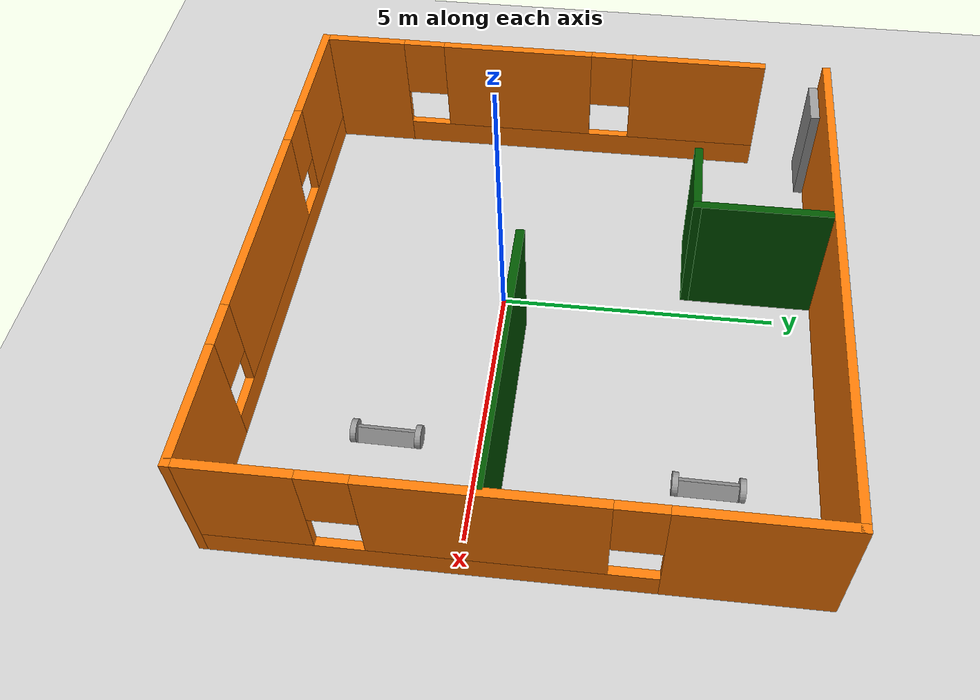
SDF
<sdf version="1.6">
 <world name="default">
  <plugin name="hello" filename="libhello.so"/>
  <light name="sun" type="directional">
   <pose>0 0 10 0 -0 0</pose>
   <diffuse>0.8 0.8 0.8 1</diffuse>
   <specular>0.2 0.2 0.2 1</specular>
   <attenuation>
    <range>1000</range>
    <constant>0.9</constant>
    <linear>0.01</linear>
    <quadratic>0.001</quadratic>
   </attenuation>
   <direction>-0.5 0.1 -0.9</direction>
  </light>
  <model name="ground_plane">
   <static>1</static>
   <link name="link">
    <collision name="collision">
     <geometry><plane><normal>0 0 1</normal><size>100 100</size></plane></geometry>
     <surface><friction><ode><mu>100</mu><mu2>50</mu2></ode></friction></surface>
    </collision>
    <visual name="visual">
     <cast_shadows>0</cast_shadows>
     <geometry><plane><normal>0 0 1</normal><size>100 100</size></plane></geometry>
     <material>
      <script><uri>file://media/materials/scripts/gazebo.material</uri><name>Gazebo/Grey</name></script>
     </material>
    </visual>
   </link>
  </model>
  <gravity>0 0 -9.8</gravity>
  <magnetic_field>6e-06 2.3e-05 -4.2e-05</magnetic_field>
  <atmosphere type="adiabatic"/>
  <physics name="default_physics" default="0" type="ode">
   <max_step_size>0.001</max_step_size>
   <real_time_factor>1</real_time_factor>
   <real_time_update_rate>1000</real_time_update_rate>
  </physics>
  <scene><ambient>0.4 0.4 0.4 1</ambient><background>0.7 0.7 0.7 1</background><shadows>1</shadows></scene>
  <spherical_coordinates>
   <surface_model>EARTH_WGS84</surface_model>
   <latitude_deg>0</latitude_deg>
   <longitude_deg>0</longitude_deg>
   <elevation>0</elevation>
   <heading_deg>0</heading_deg>
  </spherical_coordinates>
  <model name="model">
   <pose>0.571139 0.85305 0 0 -0 0</pose>
   <link name="Door_0">
    <collision name="Door_0_Collision">
     <geometry><box><size>0.9 0.17 2</size></box></geometry>
     <pose>0 0 1 0 -0 0</pose>
    </collision>
    <visual name="Door_0_Visual">
     <pose>0 0 1 0 -0 0</pose>
     <geometry><box><size>0.9 0.17 2</size></box></geometry>
     <material>
      <script><uri>file://media/materials/scripts/gazebo.material</uri><name>Gazebo/Grey</name></script>
     </material>
    </visual>
    <pose>-4.53143 4.75921 0 0 -0 0</pose>
   </link>
   <link name="Wall_11">
    <pose>-4.925 -0.625 0 0 -0 1.5708</pose>
    <visual name="Wall_11_Visual_0">
     <pose>-3.54616 0 1.25 0 -0 0</pose>
     <geometry><box><size>1.65768 0.15 2.5</size></box></geometry>
     <material>
      <script><uri>file://media/materials/scripts/gazebo.material</uri><name>Gazebo/Grey</name></script>
      <ambient>0.996078 0.47451 0.0196078 1</ambient>
     </material>
     <meta><layer>0</layer></meta>
    </visual>
    <collision name="Wall_11_Collision_0">
     <geometry><box><size>1.65768 0.15 2.5</size></box></geometry>
     <pose>-3.54616 0 1.25 0 -0 0</pose>
    </collision>
    <visual name="Wall_11_Visual_1">
     <pose>0.828841 0 0.25 0 -0 0</pose>
     <geometry><box><size>7.09232 0.15 0.5</size></box></geometry>
     <material>
      <script><uri>file://media/materials/scripts/gazebo.material</uri><name>Gazebo/Grey</name></script>
      <ambient>0.996078 0.47451 0.0196078 1</ambient>
     </material>
     <meta><layer>0</layer></meta>
    </visual>
    <collision name="Wall_11_Collision_1">
     <geometry><box><size>7.09232 0.15 0.5</size></box></geometry>
     <pose>0.828841 0 0.25 0 -0 0</pose>
    </collision>
    <visual name="Wall_11_Visual_2">
     <pose>-0.456361 0 1.5 0 -0 0</pose>
     <geometry><box><size>2.92191 0.15 2</size></box></geometry>
     <material>
      <script><uri>file://media/materials/scripts/gazebo.material</uri><name>Gazebo/Grey</name></script>
      <ambient>0.996078 0.47451 0.0196078 1</ambient>
     </material>
     <meta><layer>0</layer></meta>
    </visual>
    <collision name="Wall_11_Collision_2">
     <geometry><box><size>2.92191 0.15 2</size></box></geometry>
     <pose>-0.456361 0 1.5 0 -0 0</pose>
    </collision>
    <visual name="Wall_11_Visual_3">
     <pose>3.0898 0 1.5 0 -0 0</pose>
     <geometry><box><size>2.57041 0.15 2</size></box></geometry>
     <material>
      <script><uri>file://media/materials/scripts/gazebo.material</uri><name>Gazebo/Grey</name></script>
      <ambient>0.996078 0.47451 0.0196078 1</ambient>
     </material>
     <meta><layer>0</layer></meta>
    </visual>
    <collision name="Wall_11_Collision_3">
     <geometry><box><size>2.57041 0.15 2</size></box></geometry>
     <pose>3.0898 0 1.5 0 -0 0</pose>
    </collision>
    <visual name="Wall_11_Visual_4">
     <pose>-2.31732 0 1.9 0 -0 0</pose>
     <geometry><box><size>0.8 0.15 1.2</size></box></geometry>
     <material>
      <script><uri>file://media/materials/scripts/gazebo.material</uri><name>Gazebo/Grey</name></script>
      <ambient>0.996078 0.47451 0.0196078 1</ambient>
     </material>
     <meta><layer>0</layer></meta>
    </visual>
    <collision name="Wall_11_Collision_4">
     <geometry><box><size>0.8 0.15 1.2</size></box></geometry>
     <pose>-2.31732 0 1.9 0 -0 0</pose>
    </collision>
    <visual name="Wall_11_Visual_5">
     <pose>1.4046 0 1.9 0 -0 0</pose>
     <geometry><box><size>0.8 0.15 1.2</size></box></geometry>
     <material>
      <script><uri>file://media/materials/scripts/gazebo.material</uri><name>Gazebo/Grey</name></script>
      <ambient>0.996078 0.47451 0.0196078 1</ambient>
     </material>
     <meta><layer>0</layer></meta>
    </visual>
    <collision name="Wall_11_Collision_5">
     <geometry><box><size>0.8 0.15 1.2</size></box></geometry>
     <pose>1.4046 0 1.9 0 -0 0</pose>
    </collision>
   </link>
   <link name="Wall_13">
    <collision name="Wall_13_Collision">
     <geometry><box><size>5 0.15 2.5</size></box></geometry>
     <pose>0 0 1.25 0 -0 0</pose>
    </collision>
    <visual name="Wall_13_Visual">
     <pose>0 0 1.25 0 -0 0</pose>
     <geometry><box><size>5 0.15 2.5</size></box></geometry>
     <material>
      <script><uri>file://media/materials/scripts/gazebo.material</uri><name>Gazebo/Grey</name></script>
      <ambient>0 0.333333 0 1</ambient>
     </material>
     <meta><layer>0</layer></meta>
    </visual>
    <pose>2.38936 -0.443711 0 0 -0 3.14159</pose>
   </link>
   <link name="Wall_15">
    <collision name="Wall_15_Collision">
     <geometry><box><size>2.5 0.15 2.5</size></box></geometry>
     <pose>0 0 1.25 0 -0 0</pose>
    </collision>
    <visual name="Wall_15_Visual">
     <pose>0 0 1.25 0 -0 0</pose>
     <geometry><box><size>2.5 0.15 2.5</size></box></geometry>
     <material>
      <script><uri>file://media/materials/scripts/gazebo.material</uri><name>Gazebo/Grey</name></script>
      <ambient>0 0.333333 0 1</ambient>
     </material>
     <meta><layer>0</layer></meta>
    </visual>
    <pose>-1.02602 3.69136 0 0 0 -1.5708</pose>
   </link>
   <link name="Wall_16">
    <collision name="Wall_16_Collision">
     <geometry><box><size>1.5 0.15 2.5</size></box></geometry>
     <pose>0 0 1.25 0 -0 0</pose>
    </collision>
    <visual name="Wall_16_Visual">
     <pose>0 0 1.25 0 -0 0</pose>
     <geometry><box><size>1.5 0.15 2.5</size></box></geometry>
     <material>
      <script><uri>file://media/materials/scripts/gazebo.material</uri><name>Gazebo/Grey</name></script>
      <ambient>0 0.333333 0 1</ambient>
     </material>
     <meta><layer>0</layer></meta>
    </visual>
    <pose>-1.70102 2.51636 0 0 -0 3.14159</pose>
   </link>
   <link name="Wall_4">
    <collision name="Wall_4_Collision">
     <geometry><box><size>10 0.15 2.5</size></box></geometry>
     <pose>0 0 1.25 0 -0 0</pose>
    </collision>
    <visual name="Wall_4_Visual">
     <pose>0 0 1.25 0 -0 0</pose>
     <geometry><box><size>10 0.15 2.5</size></box></geometry>
     <material>
      <script><uri>file://media/materials/scripts/gazebo.material</uri><name>Gazebo/Grey</name></script>
      <ambient>0.996078 0.47451 0.0196078 1</ambient>
     </material>
     <meta><layer>0</layer></meta>
    </visual>
    <pose>0 4.925 0 0 -0 0</pose>
   </link>
   <link name="Wall_6">
    <pose>4.925 0 0 0 0 -1.5708</pose>
    <visual name="Wall_6_Visual_0">
     <pose>-3.63595 0 1.25 0 -0 0</pose>
     <geometry><box><size>2.7281 0.15 2.5</size></box></geometry>
     <material>
      <script><uri>file://media/materials/scripts/gazebo.material</uri><name>Gazebo/Grey</name></script>
      <ambient>0.996078 0.47451 0.0196078 1</ambient>
     </material>
     <meta><layer>0</layer></meta>
    </visual>
    <collision name="Wall_6_Collision_0">
     <geometry><box><size>2.7281 0.15 2.5</size></box></geometry>
     <pose>-3.63595 0 1.25 0 -0 0</pose>
    </collision>
    <visual name="Wall_6_Visual_1">
     <pose>1.36405 0 0.25 0 -0 0</pose>
     <geometry><box><size>7.2719 0.15 0.5</size></box></geometry>
     <material>
      <script><uri>file://media/materials/scripts/gazebo.material</uri><name>Gazebo/Grey</name></script>
      <ambient>0.996078 0.47451 0.0196078 1</ambient>
     </material>
     <meta><layer>0</layer></meta>
    </visual>
    <collision name="Wall_6_Collision_1">
     <geometry><box><size>7.2719 0.15 0.5</size></box></geometry>
     <pose>1.36405 0 0.25 0 -0 0</pose>
    </collision>
    <visual name="Wall_6_Visual_2">
     <pose>0.393617 0 1.5 0 -0 0</pose>
     <geometry><box><size>3.73102 0.15 2</size></box></geometry>
     <material>
      <script><uri>file://media/materials/scripts/gazebo.material</uri><name>Gazebo/Grey</name></script>
      <ambient>0.996078 0.47451 0.0196078 1</ambient>
     </material>
     <meta><layer>0</layer></meta>
    </visual>
    <collision name="Wall_6_Collision_2">
     <geometry><box><size>3.73102 0.15 2</size></box></geometry>
     <pose>0.393617 0 1.5 0 -0 0</pose>
    </collision>
    <visual name="Wall_6_Visual_3">
     <pose>4.02956 0 1.5 0 -0 0</pose>
     <geometry><box><size>1.94087 0.15 2</size></box></geometry>
     <material>
      <script><uri>file://media/materials/scripts/gazebo.material</uri><name>Gazebo/Grey</name></script>
      <ambient>0.996078 0.47451 0.0196078 1</ambient>
     </material>
     <meta><layer>0</layer></meta>
    </visual>
    <collision name="Wall_6_Collision_3">
     <geometry><box><size>1.94087 0.15 2</size></box></geometry>
     <pose>4.02956 0 1.5 0 -0 0</pose>
    </collision>
    <visual name="Wall_6_Visual_4">
     <pose>-1.8719 0 1.9 0 -0 0</pose>
     <geometry><box><size>0.8 0.15 1.2</size></box></geometry>
     <material>
      <script><uri>file://media/materials/scripts/gazebo.material</uri><name>Gazebo/Grey</name></script>
      <ambient>0.996078 0.47451 0.0196078 1</ambient>
     </material>
     <meta><layer>0</layer></meta>
    </visual>
    <collision name="Wall_6_Collision_4">
     <geometry><box><size>0.8 0.15 1.2</size></box></geometry>
     <pose>-1.8719 0 1.9 0 -0 0</pose>
    </collision>
    <visual name="Wall_6_Visual_5">
     <pose>2.65913 0 1.9 0 -0 0</pose>
     <geometry><box><size>0.8 0.15 1.2</size></box></geometry>
     <material>
      <script><uri>file://media/materials/scripts/gazebo.material</uri><name>Gazebo/Grey</name></script>
      <ambient>0.996078 0.47451 0.0196078 1</ambient>
     </material>
     <meta><layer>0</layer></meta>
    </visual>
    <collision name="Wall_6_Collision_5">
     <geometry><box><size>0.8 0.15 1.2</size></box></geometry>
     <pose>2.65913 0 1.9 0 -0 0</pose>
    </collision>
   </link>
   <link name="Wall_7">
    <pose>0 -4.925 0 0 -0 3.14159</pose>
    <visual name="Wall_7_Visual_0">
     <pose>-3.9051 0 1.25 0 -0 0</pose>
     <geometry><box><size>2.1898 0.15 2.5</size></box></geometry>
     <material>
      <script><uri>file://media/materials/scripts/gazebo.material</uri><name>Gazebo/Grey</name></script>
      <ambient>0.996078 0.47451 0.0196078 1</ambient>
     </material>
     <meta><layer>0</layer></meta>
    </visual>
    <collision name="Wall_7_Collision_0">
     <geometry><box><size>2.1898 0.15 2.5</size></box></geometry>
     <pose>-3.9051 0 1.25 0 -0 0</pose>
    </collision>
    <visual name="Wall_7_Visual_1">
     <pose>1.0949 0 0.25 0 -0 0</pose>
     <geometry><box><size>7.8102 0.15 0.5</size></box></geometry>
     <material>
      <script><uri>file://media/materials/scripts/gazebo.material</uri><name>Gazebo/Grey</name></script>
      <ambient>0.996078 0.47451 0.0196078 1</ambient>
     </material>
     <meta><layer>0</layer></meta>
    </visual>
    <collision name="Wall_7_Collision_1">
     <geometry><box><size>7.8102 0.15 0.5</size></box></geometry>
     <pose>1.0949 0 0.25 0 -0 0</pose>
    </collision>
    <visual name="Wall_7_Visual_2">
     <pose>-0.063779 0 1.5 0 -0 0</pose>
     <geometry><box><size>3.89285 0.15 2</size></box></geometry>
     <material>
      <script><uri>file://media/materials/scripts/gazebo.material</uri><name>Gazebo/Grey</name></script>
      <ambient>0.996078 0.47451 0.0196078 1</ambient>
     </material>
     <meta><layer>0</layer></meta>
    </visual>
    <collision name="Wall_7_Collision_2">
     <geometry><box><size>3.89285 0.15 2</size></box></geometry>
     <pose>-0.063779 0 1.5 0 -0 0</pose>
    </collision>
    <visual name="Wall_7_Visual_3">
     <pose>3.84132 0 1.5 0 -0 0</pose>
     <geometry><box><size>2.31736 0.15 2</size></box></geometry>
     <material>
      <script><uri>file://media/materials/scripts/gazebo.material</uri><name>Gazebo/Grey</name></script>
      <ambient>0.996078 0.47451 0.0196078 1</ambient>
     </material>
     <meta><layer>0</layer></meta>
    </visual>
    <collision name="Wall_7_Collision_3">
     <geometry><box><size>2.31736 0.15 2</size></box></geometry>
     <pose>3.84132 0 1.5 0 -0 0</pose>
    </collision>
    <visual name="Wall_7_Visual_4">
     <pose>-2.4102 0 1.9 0 -0 0</pose>
     <geometry><box><size>0.8 0.15 1.2</size></box></geometry>
     <material>
      <script><uri>file://media/materials/scripts/gazebo.material</uri><name>Gazebo/Grey</name></script>
      <ambient>0.996078 0.47451 0.0196078 1</ambient>
     </material>
     <meta><layer>0</layer></meta>
    </visual>
    <collision name="Wall_7_Collision_4">
     <geometry><box><size>0.8 0.15 1.2</size></box></geometry>
     <pose>-2.4102 0 1.9 0 -0 0</pose>
    </collision>
    <visual name="Wall_7_Visual_5">
     <pose>2.28265 0 1.9 0 -0 0</pose>
     <geometry><box><size>0.8 0.15 1.2</size></box></geometry>
     <material>
      <script><uri>file://media/materials/scripts/gazebo.material</uri><name>Gazebo/Grey</name></script>
      <ambient>0.996078 0.47451 0.0196078 1</ambient>
     </material>
     <meta><layer>0</layer></meta>
    </visual>
    <collision name="Wall_7_Collision_5">
     <geometry><box><size>0.8 0.15 1.2</size></box></geometry>
     <pose>2.28265 0 1.9 0 -0 0</pose>
    </collision>
   </link>
   <link name="Wall_8">
    <collision name="Wall_8_Collision">
     <geometry><box><size>0.15 0.15 2.5</size></box></geometry>
     <pose>0 0 1.25 0 -0 0</pose>
    </collision>
    <visual name="Wall_8_Visual">
     <pose>0 0 1.25 0 -0 0</pose>
     <geometry><box><size>0.15 0.15 2.5</size></box></geometry>
     <material>
      <script><uri>file://media/materials/scripts/gazebo.material</uri><name>Gazebo/Grey</name></script>
      <ambient>1 1 1 1</ambient>
     </material>
     <meta><layer>0</layer></meta>
    </visual>
    <pose>-4.925 -4.925 0 0 -0 0</pose>
   </link>
   <static>1</static>
  </model>
  <model name="robot">
   <link name="link_1">
    <pose>-0.518533 -0.750774 0.2 0 -0 0</pose>
    <inertial>
     <mass>1</mass>
     <inertia>
      <ixx>0.166667</ixx>
      <ixy>0</ixy>
      <ixz>0</ixz>
      <iyy>0.166667</iyy>
      <iyz>0</iyz>
      <izz>0.166667</izz>
     </inertia>
    </inertial>
    <visual name="visual">
     <geometry><box><size>0.3 1 0.1</size></box></geometry>
     <material>
      <lighting>1</lighting>
      <script><uri>file://media/materials/scripts/gazebo.material</uri><name>Gazebo/Grey</name></script>
      <shader type="pixel"><normal_map>__default__</normal_map></shader>
      <ambient>0.3 0.3 0.3 1</ambient>
      <diffuse>0.7 0.7 0.7 1</diffuse>
      <specular>0.01 0.01 0.01 1</specular>
      <emissive>0 0 0 1</emissive>
     </material>
    </visual>
    <collision name="collision">
     <geometry><box><size>0.3 1 0.1</size></box></geometry>
     <surface>
      <friction>
       <ode><mu>1</mu><mu2>1</mu2><fdir1>0 0 0</fdir1><slip1>0</slip1><slip2>0</slip2></ode>
       <torsional>
        <coefficient>1</coefficient>
        <patch_radius>0</patch_radius>
        <surface_radius>0</surface_radius>
        <use_patch_radius>1</use_patch_radius>
        <ode><slip>0</slip></ode>
       </torsional>
      </friction>
      <bounce><restitution_coefficient>0</restitution_coefficient><threshold>1e+06</threshold></bounce>
      <contact>
       <collide_without_contact>0</collide_without_contact>
       <collide_without_contact_bitmask>1</collide_without_contact_bitmask>
       <collide_bitmask>1</collide_bitmask>
       <ode>
        <soft_cfm>0</soft_cfm>
        <soft_erp>0.2</soft_erp>
        <kp>1e+13</kp>
        <kd>1</kd>
        <max_vel>0.01</max_vel>
        <min_depth>0</min_depth>
       </ode>
       <bullet>
        <split_impulse>1</split_impulse>
        <split_impulse_penetration_threshold>-0.01</split_impulse_penetration_threshold>
        <soft_cfm>0</soft_cfm>
        <soft_erp>0.2</soft_erp>
        <kp>1e+13</kp>
        <kd>1</kd>
       </bullet>
      </contact>
     </surface>
    </collision>
   </link>
   <link name="link_2">
    <pose>-0.468533 -1.30079 0.2 1.5707 -0 0</pose>
    <inertial>
     <mass>1</mass>
     <inertia><ixx>0.145833</ixx><ixy>0</ixy><ixz>0</ixz><iyy>0.145833</iyy><iyz>0</iyz><izz>0.125</izz></inertia>
    </inertial>
    <visual name="visual">
     <geometry><cylinder><radius>0.2</radius><length>0.1</length></cylinder></geometry>
     <material>
      <lighting>1</lighting>
      <script><uri>file://media/materials/scripts/gazebo.material</uri><name>Gazebo/Grey</name></script>
      <shader type="pixel"><normal_map>__default__</normal_map></shader>
      <ambient>0.3 0.3 0.3 1</ambient>
      <diffuse>0.7 0.7 0.7 1</diffuse>
      <specular>0.01 0.01 0.01 1</specular>
      <emissive>0 0 0 1</emissive>
     </material>
    </visual>
    <collision name="collision">
     <geometry><cylinder><radius>0.2</radius><length>0.1</length></cylinder></geometry>
     <surface>
      <friction>
       <ode><mu>1</mu><mu2>1</mu2><fdir1>0 0 0</fdir1><slip1>0</slip1><slip2>0</slip2></ode>
       <torsional>
        <coefficient>1</coefficient>
        <patch_radius>0</patch_radius>
        <surface_radius>0</surface_radius>
        <use_patch_radius>1</use_patch_radius>
        <ode><slip>0</slip></ode>
       </torsional>
      </friction>
      <bounce><restitution_coefficient>0</restitution_coefficient><threshold>1e+06</threshold></bounce>
      <contact>
       <collide_without_contact>0</collide_without_contact>
       <collide_without_contact_bitmask>1</collide_without_contact_bitmask>
       <collide_bitmask>1</collide_bitmask>
       <ode>
        <soft_cfm>0</soft_cfm>
        <soft_erp>0.2</soft_erp>
        <kp>1e+13</kp>
        <kd>1</kd>
        <max_vel>0.01</max_vel>
        <min_depth>0</min_depth>
       </ode>
       <bullet>
        <split_impulse>1</split_impulse>
        <split_impulse_penetration_threshold>-0.01</split_impulse_penetration_threshold>
        <soft_cfm>0</soft_cfm>
        <soft_erp>0.2</soft_erp>
        <kp>1e+13</kp>
        <kd>1</kd>
       </bullet>
      </contact>
     </surface>
    </collision>
   </link>
   <link name="link_2_clone">
    <pose>-0.468533 -0.200754 0.2 1.5707 -0 0</pose>
    <inertial>
     <mass>1</mass>
     <inertia><ixx>0.145833</ixx><ixy>0</ixy><ixz>0</ixz><iyy>0.145833</iyy><iyz>0</iyz><izz>0.125</izz></inertia>
    </inertial>
    <visual name="visual">
     <geometry><cylinder><radius>0.2</radius><length>0.1</length></cylinder></geometry>
     <material>
      <lighting>1</lighting>
      <script><uri>file://media/materials/scripts/gazebo.material</uri><name>Gazebo/Grey</name></script>
      <shader type="pixel"><normal_map>__default__</normal_map></shader>
      <ambient>0.3 0.3 0.3 1</ambient>
      <diffuse>0.7 0.7 0.7 1</diffuse>
      <specular>0.01 0.01 0.01 1</specular>
      <emissive>0 0 0 1</emissive>
     </material>
    </visual>
    <collision name="collision">
     <geometry><cylinder><radius>0.2</radius><length>0.1</length></cylinder></geometry>
     <surface>
      <friction>
       <ode><mu>1</mu><mu2>1</mu2><fdir1>0 0 0</fdir1><slip1>0</slip1><slip2>0</slip2></ode>
       <torsional>
        <coefficient>1</coefficient>
        <patch_radius>0</patch_radius>
        <surface_radius>0</surface_radius>
        <use_patch_radius>1</use_patch_radius>
        <ode><slip>0</slip></ode>
       </torsional>
      </friction>
      <bounce><restitution_coefficient>0</restitution_coefficient><threshold>1e+06</threshold></bounce>
      <contact>
       <collide_without_contact>0</collide_without_contact>
       <collide_without_contact_bitmask>1</collide_without_contact_bitmask>
       <collide_bitmask>1</collide_bitmask>
       <ode>
        <soft_cfm>0</soft_cfm>
        <soft_erp>0.2</soft_erp>
        <kp>1e+13</kp>
        <kd>1</kd>
        <max_vel>0.01</max_vel>
        <min_depth>0</min_depth>
       </ode>
       <bullet>
        <split_impulse>1</split_impulse>
        <split_impulse_penetration_threshold>-0.01</split_impulse_penetration_threshold>
        <soft_cfm>0</soft_cfm>
        <soft_erp>0.2</soft_erp>
        <kp>1e+13</kp>
        <kd>1</kd>
       </bullet>
      </contact>
     </surface>
    </collision>
   </link>
   <joint name="link_1_JOINT_0" type="revolute">
    <parent>link_1</parent>
    <child>link_2</child>
    <axis>
     <xyz>0 0 1</xyz>
     <use_parent_model_frame>0</use_parent_model_frame>
     <limit>
      <lower>-1.79769e+308</lower>
      <upper>1.79769e+308</upper>
      <effort>-1</effort>
      <velocity>-1</velocity>
     </limit>
     <dynamics>
      <spring_reference>0</spring_reference>
      <spring_stiffness>0</spring_stiffness>
      <damping>0</damping>
     </dynamics>
    </axis>
    <physics>
     <ode><limit><cfm>0</cfm><erp>0.2</erp></limit><suspension><cfm>0</cfm><erp>0.2</erp></suspension></ode>
    </physics>
   </joint>
   <joint name="link_1_JOINT_1" type="revolute">
    <parent>link_1</parent>
    <child>link_2_clone</child>
    <axis>
     <xyz>0 0 1</xyz>
     <use_parent_model_frame>0</use_parent_model_frame>
     <limit>
      <lower>-1.79769e+308</lower>
      <upper>1.79769e+308</upper>
      <effort>-1</effort>
      <velocity>-1</velocity>
     </limit>
     <dynamics>
      <spring_reference>0</spring_reference>
      <spring_stiffness>0</spring_stiffness>
      <damping>0</damping>
     </dynamics>
    </axis>
    <physics>
     <ode><limit><cfm>0</cfm><erp>0.2</erp></limit><suspension><cfm>0</cfm><erp>0.2</erp></suspension></ode>
    </physics>
   </joint>
   <static>0</static>
   <pose>3.22678 -0.804263 0.707524 -3.14158 -1.08087 3.12875</pose>
  </model>
  <model name="robot_0">
   <link name="link_1">
    <pose>-0.518533 -0.750774 0.2 0 -0 0</pose>
    <inertial>
     <mass>1</mass>
     <inertia>
      <ixx>0.166667</ixx>
      <ixy>0</ixy>
      <ixz>0</ixz>
      <iyy>0.166667</iyy>
      <iyz>0</iyz>
      <izz>0.166667</izz>
     </inertia>
    </inertial>
    <visual name="visual">
     <geometry><box><size>0.3 1 0.1</size></box></geometry>
     <material>
      <lighting>1</lighting>
      <script><uri>file://media/materials/scripts/gazebo.material</uri><name>Gazebo/Grey</name></script>
      <shader type="pixel"><normal_map>__default__</normal_map></shader>
      <ambient>0.3 0.3 0.3 1</ambient>
      <diffuse>0.7 0.7 0.7 1</diffuse>
      <specular>0.01 0.01 0.01 1</specular>
      <emissive>0 0 0 1</emissive>
     </material>
    </visual>
    <collision name="collision">
     <geometry><box><size>0.3 1 0.1</size></box></geometry>
     <surface>
      <friction>
       <ode><mu>1</mu><mu2>1</mu2><fdir1>0 0 0</fdir1><slip1>0</slip1><slip2>0</slip2></ode>
       <torsional>
        <coefficient>1</coefficient>
        <patch_radius>0</patch_radius>
        <surface_radius>0</surface_radius>
        <use_patch_radius>1</use_patch_radius>
        <ode><slip>0</slip></ode>
       </torsional>
      </friction>
      <bounce><restitution_coefficient>0</restitution_coefficient><threshold>1e+06</threshold></bounce>
      <contact>
       <collide_without_contact>0</collide_without_contact>
       <collide_without_contact_bitmask>1</collide_without_contact_bitmask>
       <collide_bitmask>1</collide_bitmask>
       <ode>
        <soft_cfm>0</soft_cfm>
        <soft_erp>0.2</soft_erp>
        <kp>1e+13</kp>
        <kd>1</kd>
        <max_vel>0.01</max_vel>
        <min_depth>0</min_depth>
       </ode>
       <bullet>
        <split_impulse>1</split_impulse>
        <split_impulse_penetration_threshold>-0.01</split_impulse_penetration_threshold>
        <soft_cfm>0</soft_cfm>
        <soft_erp>0.2</soft_erp>
        <kp>1e+13</kp>
        <kd>1</kd>
       </bullet>
      </contact>
     </surface>
    </collision>
   </link>
   <link name="link_2">
    <pose>-0.468533 -1.30079 0.2 1.5707 -0 0</pose>
    <inertial>
     <mass>1</mass>
     <inertia><ixx>0.145833</ixx><ixy>0</ixy><ixz>0</ixz><iyy>0.145833</iyy><iyz>0</iyz><izz>0.125</izz></inertia>
    </inertial>
    <visual name="visual">
     <geometry><cylinder><radius>0.2</radius><length>0.1</length></cylinder></geometry>
     <material>
      <lighting>1</lighting>
      <script><uri>file://media/materials/scripts/gazebo.material</uri><name>Gazebo/Grey</name></script>
      <shader type="pixel"><normal_map>__default__</normal_map></shader>
      <ambient>0.3 0.3 0.3 1</ambient>
      <diffuse>0.7 0.7 0.7 1</diffuse>
      <specular>0.01 0.01 0.01 1</specular>
      <emissive>0 0 0 1</emissive>
     </material>
    </visual>
    <collision name="collision">
     <geometry><cylinder><radius>0.2</radius><length>0.1</length></cylinder></geometry>
     <surface>
      <friction>
       <ode><mu>1</mu><mu2>1</mu2><fdir1>0 0 0</fdir1><slip1>0</slip1><slip2>0</slip2></ode>
       <torsional>
        <coefficient>1</coefficient>
        <patch_radius>0</patch_radius>
        <surface_radius>0</surface_radius>
        <use_patch_radius>1</use_patch_radius>
        <ode><slip>0</slip></ode>
       </torsional>
      </friction>
      <bounce><restitution_coefficient>0</restitution_coefficient><threshold>1e+06</threshold></bounce>
      <contact>
       <collide_without_contact>0</collide_without_contact>
       <collide_without_contact_bitmask>1</collide_without_contact_bitmask>
       <collide_bitmask>1</collide_bitmask>
       <ode>
        <soft_cfm>0</soft_cfm>
        <soft_erp>0.2</soft_erp>
        <kp>1e+13</kp>
        <kd>1</kd>
        <max_vel>0.01</max_vel>
        <min_depth>0</min_depth>
       </ode>
       <bullet>
        <split_impulse>1</split_impulse>
        <split_impulse_penetration_threshold>-0.01</split_impulse_penetration_threshold>
        <soft_cfm>0</soft_cfm>
        <soft_erp>0.2</soft_erp>
        <kp>1e+13</kp>
        <kd>1</kd>
       </bullet>
      </contact>
     </surface>
    </collision>
   </link>
   <link name="link_2_clone">
    <pose>-0.468533 -0.200754 0.2 1.5707 -0 0</pose>
    <inertial>
     <mass>1</mass>
     <inertia><ixx>0.145833</ixx><ixy>0</ixy><ixz>0</ixz><iyy>0.145833</iyy><iyz>0</iyz><izz>0.125</izz></inertia>
    </inertial>
    <visual name="visual">
     <geometry><cylinder><radius>0.2</radius><length>0.1</length></cylinder></geometry>
     <material>
      <lighting>1</lighting>
      <script><uri>file://media/materials/scripts/gazebo.material</uri><name>Gazebo/Grey</name></script>
      <shader type="pixel"><normal_map>__default__</normal_map></shader>
      <ambient>0.3 0.3 0.3 1</ambient>
      <diffuse>0.7 0.7 0.7 1</diffuse>
      <specular>0.01 0.01 0.01 1</specular>
      <emissive>0 0 0 1</emissive>
     </material>
    </visual>
    <collision name="collision">
     <geometry><cylinder><radius>0.2</radius><length>0.1</length></cylinder></geometry>
     <surface>
      <friction>
       <ode><mu>1</mu><mu2>1</mu2><fdir1>0 0 0</fdir1><slip1>0</slip1><slip2>0</slip2></ode>
       <torsional>
        <coefficient>1</coefficient>
        <patch_radius>0</patch_radius>
        <surface_radius>0</surface_radius>
        <use_patch_radius>1</use_patch_radius>
        <ode><slip>0</slip></ode>
       </torsional>
      </friction>
      <bounce><restitution_coefficient>0</restitution_coefficient><threshold>1e+06</threshold></bounce>
      <contact>
       <collide_without_contact>0</collide_without_contact>
       <collide_without_contact_bitmask>1</collide_without_contact_bitmask>
       <collide_bitmask>1</collide_bitmask>
       <ode>
        <soft_cfm>0</soft_cfm>
        <soft_erp>0.2</soft_erp>
        <kp>1e+13</kp>
        <kd>1</kd>
        <max_vel>0.01</max_vel>
        <min_depth>0</min_depth>
       </ode>
       <bullet>
        <split_impulse>1</split_impulse>
        <split_impulse_penetration_threshold>-0.01</split_impulse_penetration_threshold>
        <soft_cfm>0</soft_cfm>
        <soft_erp>0.2</soft_erp>
        <kp>1e+13</kp>
        <kd>1</kd>
       </bullet>
      </contact>
     </surface>
    </collision>
   </link>
   <joint name="link_1_JOINT_0" type="revolute">
    <parent>link_1</parent>
    <child>link_2</child>
    <axis>
     <xyz>0 0 1</xyz>
     <use_parent_model_frame>0</use_parent_model_frame>
     <limit>
      <lower>-1.79769e+308</lower>
      <upper>1.79769e+308</upper>
      <effort>-1</effort>
      <velocity>-1</velocity>
     </limit>
     <dynamics>
      <spring_reference>0</spring_reference>
      <spring_stiffness>0</spring_stiffness>
      <damping>0</damping>
     </dynamics>
    </axis>
    <physics>
     <ode><limit><cfm>0</cfm><erp>0.2</erp></limit><suspension><cfm>0</cfm><erp>0.2</erp></suspension></ode>
    </physics>
   </joint>
   <joint name="link_1_JOINT_1" type="revolute">
    <parent>link_1</parent>
    <child>link_2_clone</child>
    <axis>
     <xyz>0 0 1</xyz>
     <use_parent_model_frame>0</use_parent_model_frame>
     <limit>
      <lower>-1.79769e+308</lower>
      <upper>1.79769e+308</upper>
      <effort>-1</effort>
      <velocity>-1</velocity>
     </limit>
     <dynamics>
      <spring_reference>0</spring_reference>
      <spring_stiffness>0</spring_stiffness>
      <damping>0</damping>
     </dynamics>
    </axis>
    <physics>
     <ode><limit><cfm>0</cfm><erp>0.2</erp></limit><suspension><cfm>0</cfm><erp>0.2</erp></suspension></ode>
    </physics>
   </joint>
   <static>0</static>
   <pose>3.68433 4.6096 0.707533 3.14158 -1.08087 3.13109</pose>
  </model>
 </world>
</sdf>
